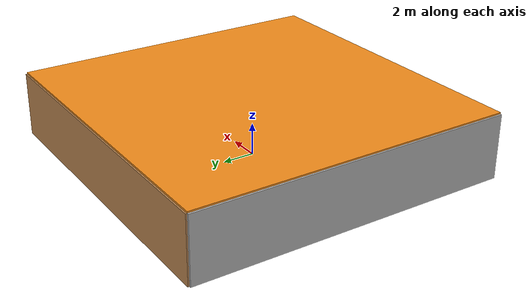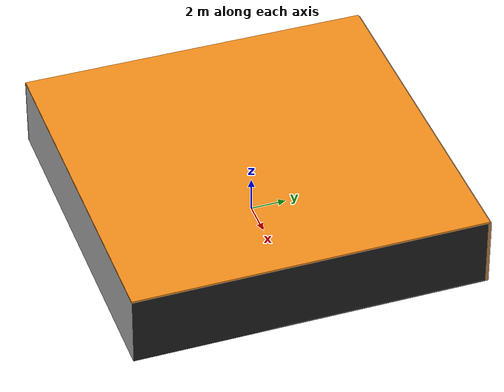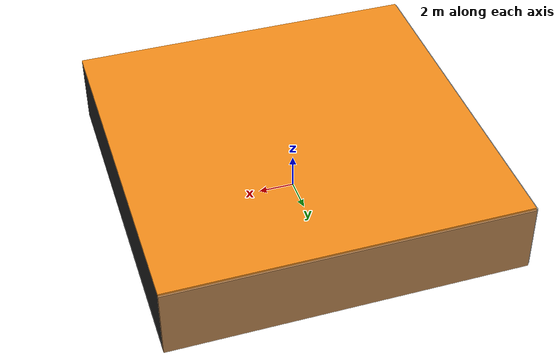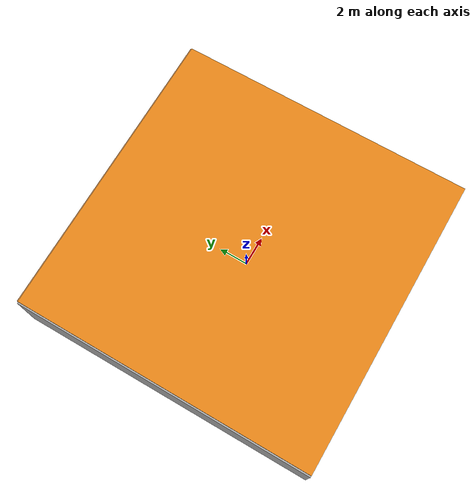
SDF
<sdf version="1.4">
 <world name="default">
  <physics type="ode">
   <max_step_size>0.001</max_step_size>
   <real_time_factor>1</real_time_factor>
   <real_time_update_rate>1000</real_time_update_rate>
   <gravity>0 0 -9.8</gravity>
  </physics>
  <scene><ambient>0.4 0.4 0.4 1</ambient><background>0.7 0.7 0.7 1</background><shadows>1</shadows></scene>
  <model name="Surrounding">
   <static>1</static>
   <link name="Ceiling">
    <collision name="Ceiling_Collision"><geometry><box><size>20 20 0.1</size></box></geometry></collision>
    <visual name="Ceiling_Visual">
     <geometry><box><size>20 20 0.1</size></box></geometry>
     <material>
      <script><uri>file://media/materials/scripts/gazebo.material</uri><name>Gazebo/Orange</name></script>
     </material>
    </visual>
    <pose>0 0 4.05 0 0 0</pose>
   </link>
   <link name="Wall_South">
    <collision name="Wall_South_Collision">
     <geometry><box><size>20 0 4</size></box></geometry>
     <pose>0 0 2 0 -0 0</pose>
    </collision>
    <visual name="Wall_South_Visual">
     <pose>0 0 2 0 -0 0</pose>
     <geometry><box><size>20 0 4</size></box></geometry>
     <material>
      <script><uri>file://media/materials/scripts/gazebo.material</uri><name>Gazebo/LightOn</name></script>
     </material>
    </visual>
    <velocity_decay><linear>0</linear><angular>0</angular></velocity_decay>
    <pose>0 -10 0 0 -0 0</pose>
   </link>
   <link name="Wall_East">
    <collision name="Wall_21_Collision">
     <geometry><box><size>20 0 4</size></box></geometry>
     <pose>0 0 2 0 -0 0</pose>
    </collision>
    <visual name="Wall_21_Visual">
     <pose>0 0 2 0 -0 0</pose>
     <geometry><box><size>20 0 4</size></box></geometry>
     <material>
      <script><uri>file://media/materials/scripts/gazebo.material</uri><name>Gazebo/FlatBlack</name></script>
     </material>
    </visual>
    <velocity_decay><linear>0</linear><angular>0</angular></velocity_decay>
    <pose>10 0 0 0 -0 1.5708</pose>
   </link>
   <link name="Wall_North">
    <collision name="Wall_22_Collision">
     <geometry><box><size>20 0.2 4</size></box></geometry>
     <pose>0 0 2 0 -0 0</pose>
    </collision>
    <visual name="Wall_22_Visual">
     <pose>0 0 2 0 -0 0</pose>
     <geometry><box><size>20 0.2 4</size></box></geometry>
     <material>
      <script><uri>file://media/materials/scripts/gazebo.material</uri><name>Gazebo/Wood</name></script>
     </material>
    </visual>
    <velocity_decay><linear>0</linear><angular>0</angular></velocity_decay>
    <pose>0 10 0 0 -0 0</pose>
   </link>
   <link name="Wall_West">
    <collision name="Wall_23_Collision">
     <geometry><box><size>20 0.2 4</size></box></geometry>
     <pose>0 0 2 0 -0 0</pose>
    </collision>
    <visual name="Wall_23_Visual">
     <pose>0 0 2 0 -0 0</pose>
     <geometry><box><size>20 0.2 4</size></box></geometry>
     <material>
      <script><uri>file://media/materials/scripts/gazebo.material</uri><name>Gazebo/JointAnchor</name></script>
     </material>
    </visual>
    <velocity_decay><linear>0</linear><angular>0</angular></velocity_decay>
    <pose>-10 0 0 0 0 -1.5708</pose>
   </link>
   <link name="Ground_link">
    <collision name="collision">
     <pose>0 0 .05 0 -0 0</pose>
     <geometry><box><size>20 20 0.1</size></box></geometry>
    </collision>
    <visual name="visual">
     <pose>0 0 .05 0 -0 0</pose>
     <geometry><box><size>20 20 0.1</size></box></geometry>
     <material>
      <script><uri>file://media/materials/scripts/gazebo.material</uri><name>Gazebo/GreyTransparent</name></script>
     </material>
    </visual>
   </link>
   <static>1</static>
  </model>
  <spherical_coordinates>
   <surface_model>EARTH_WGS84</surface_model>
   <latitude_deg>0</latitude_deg>
   <longitude_deg>0</longitude_deg>
   <elevation>0</elevation>
   <heading_deg>0</heading_deg>
  </spherical_coordinates>
  <light name="lightball_0" type="diffuse">
   <diffuse>0.8 0.8 0.8 1</diffuse>
   <specular>0.2 0.2 0.2 1</specular>
   <attenuation>
    <range>100</range>
    <constant>0.7</constant>
    <linear>0.01</linear>
    <quadratic>0.001</quadratic>
   </attenuation>
   <direction>-0.5 0.1 -0.9</direction>
   <pose>-4.27239833975 -6.73161093538 2.60364291707 0 0 0</pose>
  </light>
  <light name="lightball_1" type="diffuse">
   <diffuse>0.8 0.8 0.8 1</diffuse>
   <specular>0.2 0.2 0.2 1</specular>
   <attenuation>
    <range>100</range>
    <constant>0.7</constant>
    <linear>0.01</linear>
    <quadratic>0.001</quadratic>
   </attenuation>
   <direction>-0.5 0.1 -0.9</direction>
   <pose>2.99891913568 -4.89056780314 3.18561746645 0 0 0</pose>
  </light>
  <light name="lightball_2" type="diffuse">
   <diffuse>0.8 0.8 0.8 1</diffuse>
   <specular>0.2 0.2 0.2 1</specular>
   <attenuation>
    <range>100</range>
    <constant>0.7</constant>
    <linear>0.01</linear>
    <quadratic>0.001</quadratic>
   </attenuation>
   <direction>-0.5 0.1 -0.9</direction>
   <pose>-5.95925677581 4.3444266345 3.33978055367 0 0 0</pose>
  </light>
  <light name="lightball_3" type="diffuse">
   <diffuse>0.8 0.8 0.8 1</diffuse>
   <specular>0.2 0.2 0.2 1</specular>
   <attenuation>
    <range>100</range>
    <constant>0.7</constant>
    <linear>0.01</linear>
    <quadratic>0.001</quadratic>
   </attenuation>
   <direction>-0.5 0.1 -0.9</direction>
   <pose>2.25974983887 7.20648617891 3.12105640696 0 0 0</pose>
  </light>
  <light name="lightball_4" type="diffuse">
   <diffuse>0.8 0.8 0.8 1</diffuse>
   <specular>0.2 0.2 0.2 1</specular>
   <attenuation>
    <range>100</range>
    <constant>0.7</constant>
    <linear>0.01</linear>
    <quadratic>0.001</quadratic>
   </attenuation>
   <direction>-0.5 0.1 -0.9</direction>
   <pose>9.12082560868 -8.81655794891 1.18037169065 0 0 0</pose>
  </light>
  <light name="lightball_5" type="diffuse">
   <diffuse>0.8 0.8 0.8 1</diffuse>
   <specular>0.2 0.2 0.2 1</specular>
   <attenuation>
    <range>100</range>
    <constant>0.7</constant>
    <linear>0.01</linear>
    <quadratic>0.001</quadratic>
   </attenuation>
   <direction>-0.5 0.1 -0.9</direction>
   <pose>7.34853597868 -8.63587552846 3.24702571644 0 0 0</pose>
  </light>
  <light name="lightball_6" type="diffuse">
   <diffuse>0.8 0.8 0.8 1</diffuse>
   <specular>0.2 0.2 0.2 1</specular>
   <attenuation>
    <range>100</range>
    <constant>0.7</constant>
    <linear>0.01</linear>
    <quadratic>0.001</quadratic>
   </attenuation>
   <direction>-0.5 0.1 -0.9</direction>
   <pose>7.39518500484 6.73526954503 0.936676862906 0 0 0</pose>
  </light>
  <light name="lightball_7" type="diffuse">
   <diffuse>0.8 0.8 0.8 1</diffuse>
   <specular>0.2 0.2 0.2 1</specular>
   <attenuation>
    <range>100</range>
    <constant>0.7</constant>
    <linear>0.01</linear>
    <quadratic>0.001</quadratic>
   </attenuation>
   <direction>-0.5 0.1 -0.9</direction>
   <pose>9.91041996264 9.64306274463 2.85472094707 0 0 0</pose>
  </light>
  <light name="lightball_8" type="diffuse">
   <diffuse>0.8 0.8 0.8 1</diffuse>
   <specular>0.2 0.2 0.2 1</specular>
   <attenuation>
    <range>100</range>
    <constant>0.7</constant>
    <linear>0.01</linear>
    <quadratic>0.001</quadratic>
   </attenuation>
   <direction>-0.5 0.1 -0.9</direction>
   <pose>-8.33346626104 -2.49035054322 2.30495926629 0 0 0</pose>
  </light>
  <include><uri>model://cabinet</uri><pose>-0.956665899502 -7.4603196603 0 0 0 1.78684462243</pose></include>
  <include><uri>model://cabinet</uri><pose>1.35821558706 -7.21772489951 0 0 0 1.76363170887</pose></include>
  <include><uri>model://cabinet</uri><pose>1.10804277787 -4.56886043537 0 0 0 2.14814509044</pose></include>
  <include>
   <uri>model://construction_cone</uri>
   <pose>7.73733828957 1.5488605192 0 0 0 2.79025629705</pose>
  </include>
 </world>
</sdf>

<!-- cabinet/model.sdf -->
<sdf version="1.5">
  <model name="cabinet">
    <static>true</static>
    <link name="cabinet_bottom_plate">
      <inertial>
        <pose>0 0 -1 0 0 0</pose>
        <inertia>
          <ixx>2.050000</ixx>
          <ixy>0</ixy>
          <ixz>0</ixz>
          <iyy>2.050000</iyy>
          <iyz>0</iyz>
          <izz>2.050000</izz>
        </inertia>
        <mass>25.000000</mass>
      </inertial>
      <collision name="cabinet_bottom_plate_geom">
        <pose>0 0 0.010000 0 0 0</pose>
        <geometry>
          <box>
            <size>0.450000 0.450000 0.020000</size>
          </box>
        </geometry>
      </collision>
      <visual name="cabinet_bottom_plate_geom_visual">
        <pose>0 0 0.010000 0 0 0</pose>
        <geometry>
          <box>
            <size>0.450000 0.450000 0.020000</size>
          </box>
        </geometry>
        <material>
          <script>
            <uri>model://media/materials/scripts/gazebo.material</uri>
            <name>Gazebo/Wood</name>
          </script>
        </material>
      </visual>
      <collision name="cabinet_bottom_plate_geom_cabinet_back_plate">
        <pose>0.235000 0 0.510000 0 0 0</pose>
        <geometry>
          <box>
            <size>0.020000 0.450000 1.020000</size>
          </box>
        </geometry>
      </collision>
      <visual name="cabinet_bottom_plate_geom_cabinet_back_plate_visual">
        <pose>0.235000 0 0.510000 0 0 0</pose>
        <geometry>
          <box>
            <size>0.020000 0.450000 1.020000</size>
          </box>
        </geometry>
        <material>
          <script>
            <uri>model://media/materials/scripts/gazebo.material</uri>
            <name>Gazebo/Wood</name>
          </script>
        </material>
      </visual>
      <collision name="cabinet_bottom_plate_geom_cabinet_left_plate">
        <pose>0 0.235000 0.510000 0 0 0</pose>
        <geometry>
          <box>
            <size>0.450000 0.020000 1.020000</size>
          </box>
        </geometry>
      </collision>
      <visual name="cabinet_bottom_plate_geom_cabinet_left_plate_visual">
        <pose>0 0.235000 0.510000 0 0 0</pose>
        <geometry>
          <box>
            <size>0.450000 0.020000 1.020000</size>
          </box>
        </geometry>
        <material>
          <script>
            <uri>model://media/materials/scripts/gazebo.material</uri>
            <name>Gazebo/Wood</name>
          </script>
        </material>
      </visual>
      <collision name="cabinet_bottom_plate_geom_cabinet_middle_plate">
        <pose>0 0 0.510000 0 0 0</pose>
        <geometry>
          <box>
            <size>0.450000 0.450000 0.020000</size>
          </box>
        </geometry>
      </collision>
      <visual name="cabinet_bottom_plate_geom_cabinet_middle_plate_visual">
        <pose>0 0 0.510000 0 0 0</pose>
        <geometry>
          <box>
            <size>0.450000 0.450000 0.020000</size>
          </box>
        </geometry>
        <material>
          <script>
            <uri>model://media/materials/scripts/gazebo.material</uri>
            <name>Gazebo/Wood</name>
          </script>
        </material>
      </visual>
      <collision name="cabinet_bottom_plate_geom_cabinet_right_plate">
        <pose>0 -0.235000 0.510000 0 0 0</pose>
        <geometry>
          <box>
            <size>0.450000 0.020000 1.020000</size>
          </box>
        </geometry>
      </collision>
      <visual name="cabinet_bottom_plate_geom_cabinet_right_plate_visual">
        <pose>0 -0.235000 0.510000 0 0 0</pose>
        <geometry>
          <box>
            <size>0.450000 0.020000 1.020000</size>
          </box>
        </geometry>
        <material>
          <script>
            <uri>model://media/materials/scripts/gazebo.material</uri>
            <name>Gazebo/Wood</name>
          </script>
        </material>
      </visual>
      <collision name="cabinet_bottom_plate_geom_cabinet_top_plate">
        <pose>0 0 1.010000 0 0 0</pose>
        <geometry>
          <box>
            <size>0.450000 0.450000 0.020000</size>
          </box>
        </geometry>
      </collision>
      <visual name="cabinet_bottom_plate_geom_cabinet_top_plate_visual">
        <pose>0 0 1.010000 0 0 0</pose>
        <geometry>
          <box>
            <size>0.450000 0.450000 0.020000</size>
          </box>
        </geometry>
        <material>
          <script>
            <uri>model://media/materials/scripts/gazebo.material</uri>
            <name>Gazebo/Wood</name>
          </script>
        </material>
      </visual>
    </link>
  </model>
</sdf>

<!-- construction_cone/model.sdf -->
<sdf version="1.5">
  <model name="Construction Cone">
    <link name="link">
      <collision name="collision">
        <geometry>
          <mesh>
            <scale>10 10 10</scale>
            <uri>file://isr-testbed/construction_cone/meshes/construction_cone.dae</uri>
          </mesh>
        </geometry>
      </collision>
      <visual name="visual">
        <geometry>
          <mesh>
            <scale>10 10 10</scale>
            <uri>file://isr-testbed/construction_cone/meshes/construction_cone.dae</uri>
          </mesh>
        </geometry>
      </visual>
    </link>
  </model>
</sdf>
